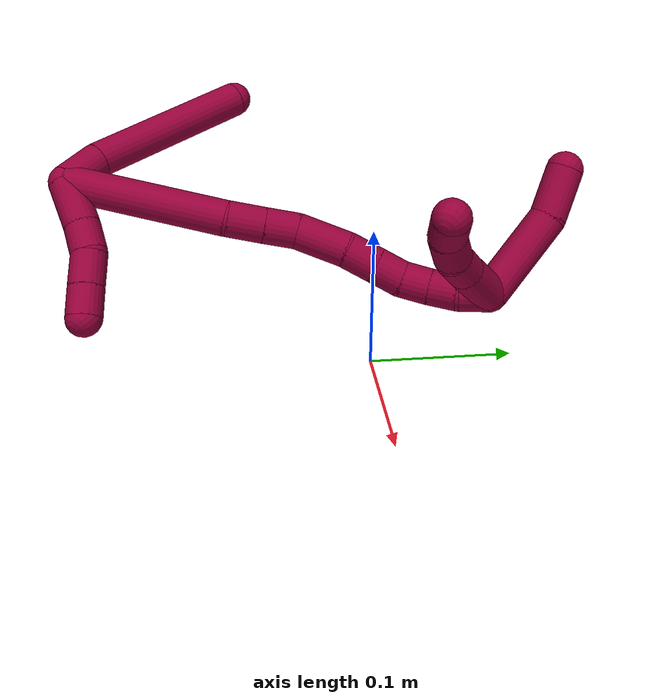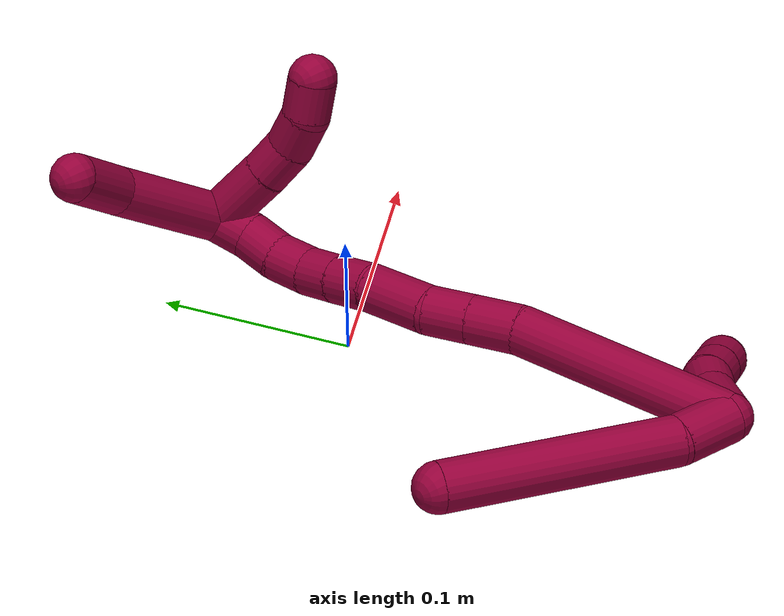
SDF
<sdf version="1.7">
 <world name="default">
  <model name="8">
   <static>0</static>
   <link name="8">
    <collision name="collision-cylinder-e_1_2_8">
     <pose>-0.000793 0.001352 0.01519 -0.088744 -0.051945 0.002307</pose>
     <geometry><cylinder><radius>0.0125</radius><length>0.030541</length></cylinder></geometry>
     <surface>
      <friction><ode><mu>1.16</mu><mu2>1.16</mu2><slip1>0</slip1><slip2>0</slip2></ode></friction>
      <contact><ode><kp>1e+06</kp><kd>1</kd><max_vel>0</max_vel><min_depth>0.001</min_depth></ode></contact>
     </surface>
    </collision>
    <visual name="visual-cylinder-e_1_2_8">
     <pose>-0.000793 0.001352 0.01519 -0.088744 -0.051945 0.002307</pose>
     <geometry><cylinder><radius>0.0125</radius><length>0.030541</length></cylinder></geometry>
     <material><ambient>0.584314 0 0.227451 1</ambient></material>
    </visual>
    <collision name="collision-cylinder-e_2_8_6">
     <pose>-0.004626 0.023654 0.086232 -0.358874 -0.050919 0.009238</pose>
     <geometry><cylinder><radius>0.0125</radius><length>0.119459</length></cylinder></geometry>
     <surface>
      <friction><ode><mu>1.16</mu><mu2>1.16</mu2><slip1>0</slip1><slip2>0</slip2></ode></friction>
      <contact><ode><kp>1e+06</kp><kd>1</kd><max_vel>0</max_vel><min_depth>0.001</min_depth></ode></contact>
     </surface>
    </collision>
    <visual name="visual-cylinder-e_2_8_6">
     <pose>-0.004626 0.023654 0.086232 -0.358874 -0.050919 0.009238</pose>
     <geometry><cylinder><radius>0.0125</radius><length>0.119459</length></cylinder></geometry>
     <material><ambient>0.584314 0 0.227451 1</ambient></material>
    </visual>
    <collision name="collision-cylinder-e_1_2_9">
     <pose>-0.007409 0.012204 -0.009061 -2.20945 -0.453557 0.86015</pose>
     <geometry><cylinder><radius>0.0125</radius><length>0.033819</length></cylinder></geometry>
     <surface>
      <friction><ode><mu>1.16</mu><mu2>1.16</mu2><slip1>0</slip1><slip2>0</slip2></ode></friction>
      <contact><ode><kp>1e+06</kp><kd>1</kd><max_vel>0</max_vel><min_depth>0.001</min_depth></ode></contact>
     </surface>
    </collision>
    <visual name="visual-cylinder-e_1_2_9">
     <pose>-0.007409 0.012204 -0.009061 -2.20945 -0.453557 0.86015</pose>
     <geometry><cylinder><radius>0.0125</radius><length>0.033819</length></cylinder></geometry>
     <material><ambient>0.584314 0 0.227451 1</ambient></material>
    </visual>
    <collision name="collision-cylinder-e_2_9_10">
     <pose>-0.018743 0.031829 -0.024811 -2.30438 -0.374294 0.804805</pose>
     <geometry><cylinder><radius>0.0125</radius><length>0.021467</length></cylinder></geometry>
     <surface>
      <friction><ode><mu>1.16</mu><mu2>1.16</mu2><slip1>0</slip1><slip2>0</slip2></ode></friction>
      <contact><ode><kp>1e+06</kp><kd>1</kd><max_vel>0</max_vel><min_depth>0.001</min_depth></ode></contact>
     </surface>
    </collision>
    <visual name="visual-cylinder-e_2_9_10">
     <pose>-0.018743 0.031829 -0.024811 -2.30438 -0.374294 0.804805</pose>
     <geometry><cylinder><radius>0.0125</radius><length>0.021467</length></cylinder></geometry>
     <material><ambient>0.584314 0 0.227451 1</ambient></material>
    </visual>
    <collision name="collision-cylinder-e_3_10_11">
     <pose>-0.027819 0.044196 -0.040885 -2.65652 -0.45211 1.49784</pose>
     <geometry><cylinder><radius>0.0125</radius><length>0.023587</length></cylinder></geometry>
     <surface>
      <friction><ode><mu>1.16</mu><mu2>1.16</mu2><slip1>0</slip1><slip2>0</slip2></ode></friction>
      <contact><ode><kp>1e+06</kp><kd>1</kd><max_vel>0</max_vel><min_depth>0.001</min_depth></ode></contact>
     </surface>
    </collision>
    <visual name="visual-cylinder-e_3_10_11">
     <pose>-0.027819 0.044196 -0.040885 -2.65652 -0.45211 1.49784</pose>
     <geometry><cylinder><radius>0.0125</radius><length>0.023587</length></cylinder></geometry>
     <material><ambient>0.584314 0 0.227451 1</ambient></material>
    </visual>
    <collision name="collision-cylinder-e_4_11_5">
     <pose>-0.037644 0.053684 -0.058584 -2.64168 -0.458147 1.48024</pose>
     <geometry><cylinder><radius>0.0125</radius><length>0.021126</length></cylinder></geometry>
     <surface>
      <friction><ode><mu>1.16</mu><mu2>1.16</mu2><slip1>0</slip1><slip2>0</slip2></ode></friction>
      <contact><ode><kp>1e+06</kp><kd>1</kd><max_vel>0</max_vel><min_depth>0.001</min_depth></ode></contact>
     </surface>
    </collision>
    <visual name="visual-cylinder-e_4_11_5">
     <pose>-0.037644 0.053684 -0.058584 -2.64168 -0.458147 1.48024</pose>
     <geometry><cylinder><radius>0.0125</radius><length>0.021126</length></cylinder></geometry>
     <material><ambient>0.584314 0 0.227451 1</ambient></material>
    </visual>
    <collision name="collision-cylinder-e_1_2_12">
     <pose>-0.006656 0.054077 0.016269 -1.27856 -0.117327 0.087269</pose>
     <geometry><cylinder><radius>0.0125</radius><length>0.113725</length></cylinder></geometry>
     <surface>
      <friction><ode><mu>1.16</mu><mu2>1.16</mu2><slip1>0</slip1><slip2>0</slip2></ode></friction>
      <contact><ode><kp>1e+06</kp><kd>1</kd><max_vel>0</max_vel><min_depth>0.001</min_depth></ode></contact>
     </surface>
    </collision>
    <visual name="visual-cylinder-e_1_2_12">
     <pose>-0.006656 0.054077 0.016269 -1.27856 -0.117327 0.087269</pose>
     <geometry><cylinder><radius>0.0125</radius><length>0.113725</length></cylinder></geometry>
     <material><ambient>0.584314 0 0.227451 1</ambient></material>
    </visual>
    <collision name="collision-cylinder-e_2_12_13">
     <pose>-0.016027 0.119402 0.037962 -1.12142 -0.214069 0.134734</pose>
     <geometry><cylinder><radius>0.0125</radius><length>0.025556</length></cylinder></geometry>
     <surface>
      <friction><ode><mu>1.16</mu><mu2>1.16</mu2><slip1>0</slip1><slip2>0</slip2></ode></friction>
      <contact><ode><kp>1e+06</kp><kd>1</kd><max_vel>0</max_vel><min_depth>0.001</min_depth></ode></contact>
     </surface>
    </collision>
    <visual name="visual-cylinder-e_2_12_13">
     <pose>-0.016027 0.119402 0.037962 -1.12142 -0.214069 0.134734</pose>
     <geometry><cylinder><radius>0.0125</radius><length>0.025556</length></cylinder></geometry>
     <material><ambient>0.584314 0 0.227451 1</ambient></material>
    </visual>
    <collision name="collision-cylinder-e_3_13_14">
     <pose>-0.021087 0.140651 0.048354 -1.10985 -0.207024 0.128617</pose>
     <geometry><cylinder><radius>0.0125</radius><length>0.022824</length></cylinder></geometry>
     <surface>
      <friction><ode><mu>1.16</mu><mu2>1.16</mu2><slip1>0</slip1><slip2>0</slip2></ode></friction>
      <contact><ode><kp>1e+06</kp><kd>1</kd><max_vel>0</max_vel><min_depth>0.001</min_depth></ode></contact>
     </surface>
    </collision>
    <visual name="visual-cylinder-e_3_13_14">
     <pose>-0.021087 0.140651 0.048354 -1.10985 -0.207024 0.128617</pose>
     <geometry><cylinder><radius>0.0125</radius><length>0.022824</length></cylinder></geometry>
     <material><ambient>0.584314 0 0.227451 1</ambient></material>
    </visual>
    <collision name="collision-cylinder-e_4_14_15">
     <pose>-0.027508 0.16774 0.056882 -1.36535 -0.22939 0.186793</pose>
     <geometry><cylinder><radius>0.0125</radius><length>0.035845</length></cylinder></geometry>
     <surface>
      <friction><ode><mu>1.16</mu><mu2>1.16</mu2><slip1>0</slip1><slip2>0</slip2></ode></friction>
      <contact><ode><kp>1e+06</kp><kd>1</kd><max_vel>0</max_vel><min_depth>0.001</min_depth></ode></contact>
     </surface>
    </collision>
    <visual name="visual-cylinder-e_4_14_15">
     <pose>-0.027508 0.16774 0.056882 -1.36535 -0.22939 0.186793</pose>
     <geometry><cylinder><radius>0.0125</radius><length>0.035845</length></cylinder></geometry>
     <material><ambient>0.584314 0 0.227451 1</ambient></material>
    </visual>
    <collision name="collision-cylinder-e_5_15_16">
     <pose>-0.035668 0.194917 0.062164 -1.40181 -0.379626 0.32145</pose>
     <geometry><cylinder><radius>0.0125</radius><length>0.022044</length></cylinder></geometry>
     <surface>
      <friction><ode><mu>1.16</mu><mu2>1.16</mu2><slip1>0</slip1><slip2>0</slip2></ode></friction>
      <contact><ode><kp>1e+06</kp><kd>1</kd><max_vel>0</max_vel><min_depth>0.001</min_depth></ode></contact>
     </surface>
    </collision>
    <visual name="visual-cylinder-e_5_15_16">
     <pose>-0.035668 0.194917 0.062164 -1.40181 -0.379626 0.32145</pose>
     <geometry><cylinder><radius>0.0125</radius><length>0.022044</length></cylinder></geometry>
     <material><ambient>0.584314 0 0.227451 1</ambient></material>
    </visual>
    <collision name="collision-cylinder-e_6_16_17">
     <pose>-0.04337 0.214227 0.065283 -1.42044 -0.370165 0.319256</pose>
     <geometry><cylinder><radius>0.0125</radius><length>0.020003</length></cylinder></geometry>
     <surface>
      <friction><ode><mu>1.16</mu><mu2>1.16</mu2><slip1>0</slip1><slip2>0</slip2></ode></friction>
      <contact><ode><kp>1e+06</kp><kd>1</kd><max_vel>0</max_vel><min_depth>0.001</min_depth></ode></contact>
     </surface>
    </collision>
    <visual name="visual-cylinder-e_6_16_17">
     <pose>-0.04337 0.214227 0.065283 -1.42044 -0.370165 0.319256</pose>
     <geometry><cylinder><radius>0.0125</radius><length>0.020003</length></cylinder></geometry>
     <material><ambient>0.584314 0 0.227451 1</ambient></material>
    </visual>
    <collision name="collision-cylinder-e_7_17_18">
     <pose>-0.048307 0.233074 0.06904 -1.33031 -0.132221 0.103772</pose>
     <geometry><cylinder><radius>0.0125</radius><length>0.020001</length></cylinder></geometry>
     <surface>
      <friction><ode><mu>1.16</mu><mu2>1.16</mu2><slip1>0</slip1><slip2>0</slip2></ode></friction>
      <contact><ode><kp>1e+06</kp><kd>1</kd><max_vel>0</max_vel><min_depth>0.001</min_depth></ode></contact>
     </surface>
    </collision>
    <visual name="visual-cylinder-e_7_17_18">
     <pose>-0.048307 0.233074 0.06904 -1.33031 -0.132221 0.103772</pose>
     <geometry><cylinder><radius>0.0125</radius><length>0.020001</length></cylinder></geometry>
     <material><ambient>0.584314 0 0.227451 1</ambient></material>
    </visual>
    <collision name="collision-cylinder-e_8_18_19">
     <pose>-0.049097 0.252573 0.072912 -1.41895 0.052903 -0.045426</pose>
     <geometry><cylinder><radius>0.0125</radius><length>0.020001</length></cylinder></geometry>
     <surface>
      <friction><ode><mu>1.16</mu><mu2>1.16</mu2><slip1>0</slip1><slip2>0</slip2></ode></friction>
      <contact><ode><kp>1e+06</kp><kd>1</kd><max_vel>0</max_vel><min_depth>0.001</min_depth></ode></contact>
     </surface>
    </collision>
    <visual name="visual-cylinder-e_8_18_19">
     <pose>-0.049097 0.252573 0.072912 -1.41895 0.052903 -0.045426</pose>
     <geometry><cylinder><radius>0.0125</radius><length>0.020001</length></cylinder></geometry>
     <material><ambient>0.584314 0 0.227451 1</ambient></material>
    </visual>
    <collision name="collision-cylinder-e_9_19_1">
     <pose>-0.047607 0.271686 0.078122 -1.18999 0.096234 -0.06516</pose>
     <geometry><cylinder><radius>0.0125</radius><length>0.020001</length></cylinder></geometry>
     <surface>
      <friction><ode><mu>1.16</mu><mu2>1.16</mu2><slip1>0</slip1><slip2>0</slip2></ode></friction>
      <contact><ode><kp>1e+06</kp><kd>1</kd><max_vel>0</max_vel><min_depth>0.001</min_depth></ode></contact>
     </surface>
    </collision>
    <visual name="visual-cylinder-e_9_19_1">
     <pose>-0.047607 0.271686 0.078122 -1.18999 0.096234 -0.06516</pose>
     <geometry><cylinder><radius>0.0125</radius><length>0.020001</length></cylinder></geometry>
     <material><ambient>0.584314 0 0.227451 1</ambient></material>
    </visual>
    <collision name="collision-cylinder-e_1_1_20">
     <pose>-0.031495 0.288948 0.109394 -0.283075 0.485535 -0.070547</pose>
     <geometry><cylinder><radius>0.0125</radius><length>0.064933</length></cylinder></geometry>
     <surface>
      <friction><ode><mu>1.16</mu><mu2>1.16</mu2><slip1>0</slip1><slip2>0</slip2></ode></friction>
      <contact><ode><kp>1e+06</kp><kd>1</kd><max_vel>0</max_vel><min_depth>0.001</min_depth></ode></contact>
     </surface>
    </collision>
    <visual name="visual-cylinder-e_1_1_20">
     <pose>-0.031495 0.288948 0.109394 -0.283075 0.485535 -0.070547</pose>
     <geometry><cylinder><radius>0.0125</radius><length>0.064933</length></cylinder></geometry>
     <material><ambient>0.584314 0 0.227451 1</ambient></material>
    </visual>
    <collision name="collision-cylinder-e_2_20_4">
     <pose>-0.005908 0.296376 0.151043 0.041975 0.637452 0.013852</pose>
     <geometry><cylinder><radius>0.0125</radius><length>0.035067</length></cylinder></geometry>
     <surface>
      <friction><ode><mu>1.16</mu><mu2>1.16</mu2><slip1>0</slip1><slip2>0</slip2></ode></friction>
      <contact><ode><kp>1e+06</kp><kd>1</kd><max_vel>0</max_vel><min_depth>0.001</min_depth></ode></contact>
     </surface>
    </collision>
    <visual name="visual-cylinder-e_2_20_4">
     <pose>-0.005908 0.296376 0.151043 0.041975 0.637452 0.013852</pose>
     <geometry><cylinder><radius>0.0125</radius><length>0.035067</length></cylinder></geometry>
     <material><ambient>0.584314 0 0.227451 1</ambient></material>
    </visual>
    <collision name="collision-cylinder-e_1_1_21">
     <pose>-0.030845 0.274696 0.07295 2.52928 0.969413 2.0604</pose>
     <geometry><cylinder><radius>0.0125</radius><length>0.038325</length></cylinder></geometry>
     <surface>
      <friction><ode><mu>1.16</mu><mu2>1.16</mu2><slip1>0</slip1><slip2>0</slip2></ode></friction>
      <contact><ode><kp>1e+06</kp><kd>1</kd><max_vel>0</max_vel><min_depth>0.001</min_depth></ode></contact>
     </surface>
    </collision>
    <visual name="visual-cylinder-e_1_1_21">
     <pose>-0.030845 0.274696 0.07295 2.52928 0.969413 2.0604</pose>
     <geometry><cylinder><radius>0.0125</radius><length>0.038325</length></cylinder></geometry>
     <material><ambient>0.584314 0 0.227451 1</ambient></material>
    </visual>
    <collision name="collision-cylinder-e_2_21_22">
     <pose>-0.006431 0.265763 0.059469 2.61137 1.01565 2.2338</pose>
     <geometry><cylinder><radius>0.0125</radius><length>0.020271</length></cylinder></geometry>
     <surface>
      <friction><ode><mu>1.16</mu><mu2>1.16</mu2><slip1>0</slip1><slip2>0</slip2></ode></friction>
      <contact><ode><kp>1e+06</kp><kd>1</kd><max_vel>0</max_vel><min_depth>0.001</min_depth></ode></contact>
     </surface>
    </collision>
    <visual name="visual-cylinder-e_2_21_22">
     <pose>-0.006431 0.265763 0.059469 2.61137 1.01565 2.2338</pose>
     <geometry><cylinder><radius>0.0125</radius><length>0.020271</length></cylinder></geometry>
     <material><ambient>0.584314 0 0.227451 1</ambient></material>
    </visual>
    <collision name="collision-cylinder-e_3_22_23">
     <pose>0.012439 0.261286 0.052721 2.44912 1.30613 2.26032</pose>
     <geometry><cylinder><radius>0.0125</radius><length>0.021254</length></cylinder></geometry>
     <surface>
      <friction><ode><mu>1.16</mu><mu2>1.16</mu2><slip1>0</slip1><slip2>0</slip2></ode></friction>
      <contact><ode><kp>1e+06</kp><kd>1</kd><max_vel>0</max_vel><min_depth>0.001</min_depth></ode></contact>
     </surface>
    </collision>
    <visual name="visual-cylinder-e_3_22_23">
     <pose>0.012439 0.261286 0.052721 2.44912 1.30613 2.26032</pose>
     <geometry><cylinder><radius>0.0125</radius><length>0.021254</length></cylinder></geometry>
     <material><ambient>0.584314 0 0.227451 1</ambient></material>
    </visual>
    <collision name="collision-cylinder-e_4_23_3">
     <pose>0.032468 0.26109 0.048705 -2.44219 1.3249 -2.26693</pose>
     <geometry><cylinder><radius>0.0125</radius><length>0.02015</length></cylinder></geometry>
     <surface>
      <friction><ode><mu>1.16</mu><mu2>1.16</mu2><slip1>0</slip1><slip2>0</slip2></ode></friction>
      <contact><ode><kp>1e+06</kp><kd>1</kd><max_vel>0</max_vel><min_depth>0.001</min_depth></ode></contact>
     </surface>
    </collision>
    <visual name="visual-cylinder-e_4_23_3">
     <pose>0.032468 0.26109 0.048705 -2.44219 1.3249 -2.26693</pose>
     <geometry><cylinder><radius>0.0125</radius><length>0.02015</length></cylinder></geometry>
     <material><ambient>0.584314 0 0.227451 1</ambient></material>
    </visual>
    <collision name="collision-sphere-3">
     <pose>0.042239 0.262669 0.046828 0 -0 0</pose>
     <geometry><sphere><radius>0.0125</radius></sphere></geometry>
     <surface>
      <friction><ode><mu>1.16</mu><mu2>1.16</mu2><slip1>0</slip1><slip2>0</slip2></ode></friction>
      <contact><ode><kp>1e+06</kp><kd>1</kd><max_vel>0</max_vel><min_depth>0.001</min_depth></ode></contact>
     </surface>
    </collision>
    <visual name="visual-sphere-3">
     <pose>0.042239 0.262669 0.046828 0 -0 0</pose>
     <geometry><sphere><radius>0.0125</radius></sphere></geometry>
     <material><ambient>0.584314 0 0.227451 1</ambient></material>
    </visual>
    <collision name="collision-sphere-23">
     <pose>0.022696 0.259512 0.050581 0 -0 0</pose>
     <geometry><sphere><radius>0.0125</radius></sphere></geometry>
     <surface>
      <friction><ode><mu>1.16</mu><mu2>1.16</mu2><slip1>0</slip1><slip2>0</slip2></ode></friction>
      <contact><ode><kp>1e+06</kp><kd>1</kd><max_vel>0</max_vel><min_depth>0.001</min_depth></ode></contact>
     </surface>
    </collision>
    <visual name="visual-sphere-23">
     <pose>0.022696 0.259512 0.050581 0 -0 0</pose>
     <geometry><sphere><radius>0.0125</radius></sphere></geometry>
     <material><ambient>0.584314 0 0.227451 1</ambient></material>
    </visual>
    <collision name="collision-sphere-22">
     <pose>0.002182 0.263061 0.05486 0 -0 0</pose>
     <geometry><sphere><radius>0.0125</radius></sphere></geometry>
     <surface>
      <friction><ode><mu>1.16</mu><mu2>1.16</mu2><slip1>0</slip1><slip2>0</slip2></ode></friction>
      <contact><ode><kp>1e+06</kp><kd>1</kd><max_vel>0</max_vel><min_depth>0.001</min_depth></ode></contact>
     </surface>
    </collision>
    <visual name="visual-sphere-22">
     <pose>0.002182 0.263061 0.05486 0 -0 0</pose>
     <geometry><sphere><radius>0.0125</radius></sphere></geometry>
     <material><ambient>0.584314 0 0.227451 1</ambient></material>
    </visual>
    <collision name="collision-sphere-21">
     <pose>-0.015045 0.268464 0.064078 0 -0 0</pose>
     <geometry><sphere><radius>0.0125</radius></sphere></geometry>
     <surface>
      <friction><ode><mu>1.16</mu><mu2>1.16</mu2><slip1>0</slip1><slip2>0</slip2></ode></friction>
      <contact><ode><kp>1e+06</kp><kd>1</kd><max_vel>0</max_vel><min_depth>0.001</min_depth></ode></contact>
     </surface>
    </collision>
    <visual name="visual-sphere-21">
     <pose>-0.015045 0.268464 0.064078 0 -0 0</pose>
     <geometry><sphere><radius>0.0125</radius></sphere></geometry>
     <material><ambient>0.584314 0 0.227451 1</ambient></material>
    </visual>
    <collision name="collision-sphere-4">
     <pose>0.004527 0.295785 0.165121 0 -0 0</pose>
     <geometry><sphere><radius>0.0125</radius></sphere></geometry>
     <surface>
      <friction><ode><mu>1.16</mu><mu2>1.16</mu2><slip1>0</slip1><slip2>0</slip2></ode></friction>
      <contact><ode><kp>1e+06</kp><kd>1</kd><max_vel>0</max_vel><min_depth>0.001</min_depth></ode></contact>
     </surface>
    </collision>
    <visual name="visual-sphere-4">
     <pose>0.004527 0.295785 0.165121 0 -0 0</pose>
     <geometry><sphere><radius>0.0125</radius></sphere></geometry>
     <material><ambient>0.584314 0 0.227451 1</ambient></material>
    </visual>
    <collision name="collision-sphere-20">
     <pose>-0.016343 0.296968 0.136965 0 -0 0</pose>
     <geometry><sphere><radius>0.0125</radius></sphere></geometry>
     <surface>
      <friction><ode><mu>1.16</mu><mu2>1.16</mu2><slip1>0</slip1><slip2>0</slip2></ode></friction>
      <contact><ode><kp>1e+06</kp><kd>1</kd><max_vel>0</max_vel><min_depth>0.001</min_depth></ode></contact>
     </surface>
    </collision>
    <visual name="visual-sphere-20">
     <pose>-0.016343 0.296968 0.136965 0 -0 0</pose>
     <geometry><sphere><radius>0.0125</radius></sphere></geometry>
     <material><ambient>0.584314 0 0.227451 1</ambient></material>
    </visual>
    <collision name="collision-sphere-11">
     <pose>-0.032972 0.049143 -0.05027 0 -0 0</pose>
     <geometry><sphere><radius>0.0125</radius></sphere></geometry>
     <surface>
      <friction><ode><mu>1.16</mu><mu2>1.16</mu2><slip1>0</slip1><slip2>0</slip2></ode></friction>
      <contact><ode><kp>1e+06</kp><kd>1</kd><max_vel>0</max_vel><min_depth>0.001</min_depth></ode></contact>
     </surface>
    </collision>
    <visual name="visual-sphere-11">
     <pose>-0.032972 0.049143 -0.05027 0 -0 0</pose>
     <geometry><sphere><radius>0.0125</radius></sphere></geometry>
     <material><ambient>0.584314 0 0.227451 1</ambient></material>
    </visual>
    <collision name="collision-sphere-10">
     <pose>-0.022667 0.03925 -0.0315 0 -0 0</pose>
     <geometry><sphere><radius>0.0125</radius></sphere></geometry>
     <surface>
      <friction><ode><mu>1.16</mu><mu2>1.16</mu2><slip1>0</slip1><slip2>0</slip2></ode></friction>
      <contact><ode><kp>1e+06</kp><kd>1</kd><max_vel>0</max_vel><min_depth>0.001</min_depth></ode></contact>
     </surface>
    </collision>
    <visual name="visual-sphere-10">
     <pose>-0.022667 0.03925 -0.0315 0 -0 0</pose>
     <geometry><sphere><radius>0.0125</radius></sphere></geometry>
     <material><ambient>0.584314 0 0.227451 1</ambient></material>
    </visual>
    <collision name="collision-sphere-6">
     <pose>-0.007666 0.044605 0.142083 0 -0 0</pose>
     <geometry><sphere><radius>0.0125</radius></sphere></geometry>
     <surface>
      <friction><ode><mu>1.16</mu><mu2>1.16</mu2><slip1>0</slip1><slip2>0</slip2></ode></friction>
      <contact><ode><kp>1e+06</kp><kd>1</kd><max_vel>0</max_vel><min_depth>0.001</min_depth></ode></contact>
     </surface>
    </collision>
    <visual name="visual-sphere-6">
     <pose>-0.007666 0.044605 0.142083 0 -0 0</pose>
     <geometry><sphere><radius>0.0125</radius></sphere></geometry>
     <material><ambient>0.584314 0 0.227451 1</ambient></material>
    </visual>
    <collision name="collision-sphere-9">
     <pose>-0.014819 0.024408 -0.018122 0 -0 0</pose>
     <geometry><sphere><radius>0.0125</radius></sphere></geometry>
     <surface>
      <friction><ode><mu>1.16</mu><mu2>1.16</mu2><slip1>0</slip1><slip2>0</slip2></ode></friction>
      <contact><ode><kp>1e+06</kp><kd>1</kd><max_vel>0</max_vel><min_depth>0.001</min_depth></ode></contact>
     </surface>
    </collision>
    <visual name="visual-sphere-9">
     <pose>-0.014819 0.024408 -0.018122 0 -0 0</pose>
     <geometry><sphere><radius>0.0125</radius></sphere></geometry>
     <material><ambient>0.584314 0 0.227451 1</ambient></material>
    </visual>
    <collision name="collision-sphere-2">
     <geometry><sphere><radius>0.0125</radius></sphere></geometry>
     <surface>
      <friction><ode><mu>1.16</mu><mu2>1.16</mu2><slip1>0</slip1><slip2>0</slip2></ode></friction>
      <contact><ode><kp>1e+06</kp><kd>1</kd><max_vel>0</max_vel><min_depth>0.001</min_depth></ode></contact>
     </surface>
    </collision>
    <visual name="visual-sphere-2">
     <geometry><sphere><radius>0.0125</radius></sphere></geometry>
     <material><ambient>0.584314 0 0.227451 1</ambient></material>
    </visual>
    <collision name="collision-sphere-19">
     <pose>-0.048568 0.262445 0.074423 0 -0 0</pose>
     <geometry><sphere><radius>0.0125</radius></sphere></geometry>
     <surface>
      <friction><ode><mu>1.16</mu><mu2>1.16</mu2><slip1>0</slip1><slip2>0</slip2></ode></friction>
      <contact><ode><kp>1e+06</kp><kd>1</kd><max_vel>0</max_vel><min_depth>0.001</min_depth></ode></contact>
     </surface>
    </collision>
    <visual name="visual-sphere-19">
     <pose>-0.048568 0.262445 0.074423 0 -0 0</pose>
     <geometry><sphere><radius>0.0125</radius></sphere></geometry>
     <material><ambient>0.584314 0 0.227451 1</ambient></material>
    </visual>
    <collision name="collision-sphere-8">
     <pose>-0.001586 0.002703 0.03038 0 -0 0</pose>
     <geometry><sphere><radius>0.0125</radius></sphere></geometry>
     <surface>
      <friction><ode><mu>1.16</mu><mu2>1.16</mu2><slip1>0</slip1><slip2>0</slip2></ode></friction>
      <contact><ode><kp>1e+06</kp><kd>1</kd><max_vel>0</max_vel><min_depth>0.001</min_depth></ode></contact>
     </surface>
    </collision>
    <visual name="visual-sphere-8">
     <pose>-0.001586 0.002703 0.03038 0 -0 0</pose>
     <geometry><sphere><radius>0.0125</radius></sphere></geometry>
     <material><ambient>0.584314 0 0.227451 1</ambient></material>
    </visual>
    <collision name="collision-sphere-5">
     <pose>-0.042316 0.058225 -0.066898 0 -0 0</pose>
     <geometry><sphere><radius>0.0125</radius></sphere></geometry>
     <surface>
      <friction><ode><mu>1.16</mu><mu2>1.16</mu2><slip1>0</slip1><slip2>0</slip2></ode></friction>
      <contact><ode><kp>1e+06</kp><kd>1</kd><max_vel>0</max_vel><min_depth>0.001</min_depth></ode></contact>
     </surface>
    </collision>
    <visual name="visual-sphere-5">
     <pose>-0.042316 0.058225 -0.066898 0 -0 0</pose>
     <geometry><sphere><radius>0.0125</radius></sphere></geometry>
     <material><ambient>0.584314 0 0.227451 1</ambient></material>
    </visual>
    <collision name="collision-sphere-12">
     <pose>-0.013312 0.108155 0.032538 0 -0 0</pose>
     <geometry><sphere><radius>0.0125</radius></sphere></geometry>
     <surface>
      <friction><ode><mu>1.16</mu><mu2>1.16</mu2><slip1>0</slip1><slip2>0</slip2></ode></friction>
      <contact><ode><kp>1e+06</kp><kd>1</kd><max_vel>0</max_vel><min_depth>0.001</min_depth></ode></contact>
     </surface>
    </collision>
    <visual name="visual-sphere-12">
     <pose>-0.013312 0.108155 0.032538 0 -0 0</pose>
     <geometry><sphere><radius>0.0125</radius></sphere></geometry>
     <material><ambient>0.584314 0 0.227451 1</ambient></material>
    </visual>
    <collision name="collision-sphere-13">
     <pose>-0.018742 0.130648 0.043387 0 -0 0</pose>
     <geometry><sphere><radius>0.0125</radius></sphere></geometry>
     <surface>
      <friction><ode><mu>1.16</mu><mu2>1.16</mu2><slip1>0</slip1><slip2>0</slip2></ode></friction>
      <contact><ode><kp>1e+06</kp><kd>1</kd><max_vel>0</max_vel><min_depth>0.001</min_depth></ode></contact>
     </surface>
    </collision>
    <visual name="visual-sphere-13">
     <pose>-0.018742 0.130648 0.043387 0 -0 0</pose>
     <geometry><sphere><radius>0.0125</radius></sphere></geometry>
     <material><ambient>0.584314 0 0.227451 1</ambient></material>
    </visual>
    <collision name="collision-sphere-14">
     <pose>-0.023433 0.150654 0.053322 0 -0 0</pose>
     <geometry><sphere><radius>0.0125</radius></sphere></geometry>
     <surface>
      <friction><ode><mu>1.16</mu><mu2>1.16</mu2><slip1>0</slip1><slip2>0</slip2></ode></friction>
      <contact><ode><kp>1e+06</kp><kd>1</kd><max_vel>0</max_vel><min_depth>0.001</min_depth></ode></contact>
     </surface>
    </collision>
    <visual name="visual-sphere-14">
     <pose>-0.023433 0.150654 0.053322 0 -0 0</pose>
     <geometry><sphere><radius>0.0125</radius></sphere></geometry>
     <material><ambient>0.584314 0 0.227451 1</ambient></material>
    </visual>
    <collision name="collision-sphere-15">
     <pose>-0.031584 0.184826 0.060443 0 -0 0</pose>
     <geometry><sphere><radius>0.0125</radius></sphere></geometry>
     <surface>
      <friction><ode><mu>1.16</mu><mu2>1.16</mu2><slip1>0</slip1><slip2>0</slip2></ode></friction>
      <contact><ode><kp>1e+06</kp><kd>1</kd><max_vel>0</max_vel><min_depth>0.001</min_depth></ode></contact>
     </surface>
    </collision>
    <visual name="visual-sphere-15">
     <pose>-0.031584 0.184826 0.060443 0 -0 0</pose>
     <geometry><sphere><radius>0.0125</radius></sphere></geometry>
     <material><ambient>0.584314 0 0.227451 1</ambient></material>
    </visual>
    <collision name="collision-sphere-16">
     <pose>-0.039752 0.205008 0.063886 0 -0 0</pose>
     <geometry><sphere><radius>0.0125</radius></sphere></geometry>
     <surface>
      <friction><ode><mu>1.16</mu><mu2>1.16</mu2><slip1>0</slip1><slip2>0</slip2></ode></friction>
      <contact><ode><kp>1e+06</kp><kd>1</kd><max_vel>0</max_vel><min_depth>0.001</min_depth></ode></contact>
     </surface>
    </collision>
    <visual name="visual-sphere-16">
     <pose>-0.039752 0.205008 0.063886 0 -0 0</pose>
     <geometry><sphere><radius>0.0125</radius></sphere></geometry>
     <material><ambient>0.584314 0 0.227451 1</ambient></material>
    </visual>
    <collision name="collision-sphere-17">
     <pose>-0.046989 0.223446 0.066679 0 -0 0</pose>
     <geometry><sphere><radius>0.0125</radius></sphere></geometry>
     <surface>
      <friction><ode><mu>1.16</mu><mu2>1.16</mu2><slip1>0</slip1><slip2>0</slip2></ode></friction>
      <contact><ode><kp>1e+06</kp><kd>1</kd><max_vel>0</max_vel><min_depth>0.001</min_depth></ode></contact>
     </surface>
    </collision>
    <visual name="visual-sphere-17">
     <pose>-0.046989 0.223446 0.066679 0 -0 0</pose>
     <geometry><sphere><radius>0.0125</radius></sphere></geometry>
     <material><ambient>0.584314 0 0.227451 1</ambient></material>
    </visual>
    <collision name="collision-sphere-18">
     <pose>-0.049626 0.242702 0.071402 0 -0 0</pose>
     <geometry><sphere><radius>0.0125</radius></sphere></geometry>
     <surface>
      <friction><ode><mu>1.16</mu><mu2>1.16</mu2><slip1>0</slip1><slip2>0</slip2></ode></friction>
      <contact><ode><kp>1e+06</kp><kd>1</kd><max_vel>0</max_vel><min_depth>0.001</min_depth></ode></contact>
     </surface>
    </collision>
    <visual name="visual-sphere-18">
     <pose>-0.049626 0.242702 0.071402 0 -0 0</pose>
     <geometry><sphere><radius>0.0125</radius></sphere></geometry>
     <material><ambient>0.584314 0 0.227451 1</ambient></material>
    </visual>
    <collision name="collision-sphere-1">
     <pose>-0.046646 0.280927 0.081822 0 -0 0</pose>
     <geometry><sphere><radius>0.0125</radius></sphere></geometry>
     <surface>
      <friction><ode><mu>1.16</mu><mu2>1.16</mu2><slip1>0</slip1><slip2>0</slip2></ode></friction>
      <contact><ode><kp>1e+06</kp><kd>1</kd><max_vel>0</max_vel><min_depth>0.001</min_depth></ode></contact>
     </surface>
    </collision>
    <visual name="visual-sphere-1">
     <pose>-0.046646 0.280927 0.081822 0 -0 0</pose>
     <geometry><sphere><radius>0.0125</radius></sphere></geometry>
     <material><ambient>0.584314 0 0.227451 1</ambient></material>
    </visual>
    <inertial>
     <pose>-0.016687 0.138904 0.052357 0 -0 0</pose>
     <mass>0.75</mass>
     <inertia>
      <ixx>0.000348</ixx>
      <ixy>0</ixy>
      <ixz>0</ixz>
      <iyy>0.000276</iyy>
      <iyz>0</iyz>
      <izz>-0.000176</izz>
     </inertia>
    </inertial>
   </link>
   <pose>-0.057817 -0.203946 0.120846 -0.447364 -1.2387 -0.174336</pose>
  </model>
 </world>
</sdf>
